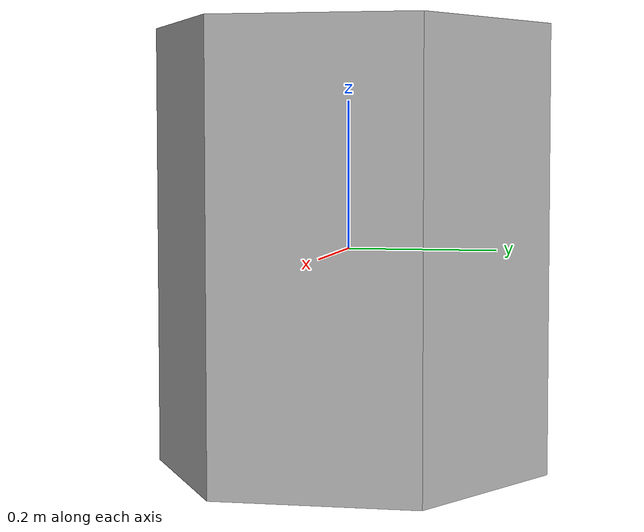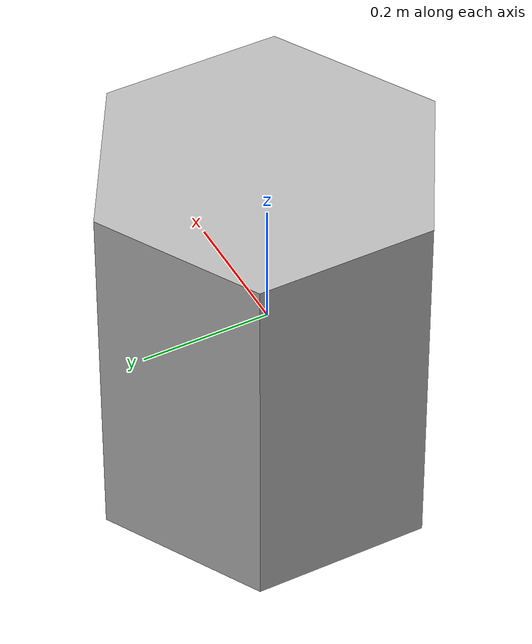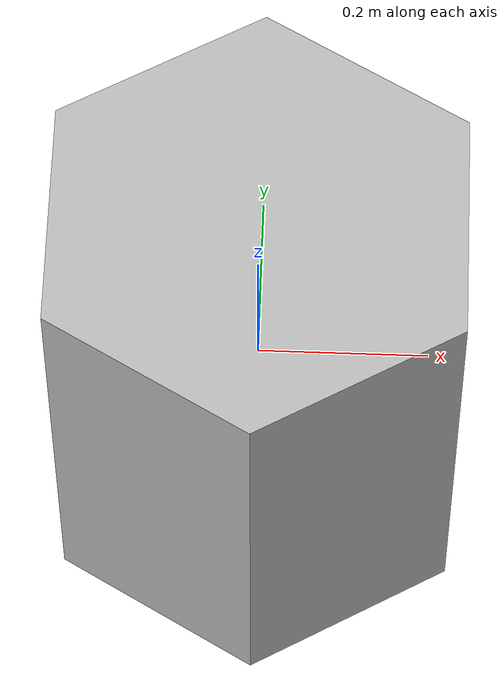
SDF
<?xml version="1.0"?>
<sdf version="1.6">
  <model name="xgc2_convex_ugv_hexagon_1">
    <static>true</static>
    <link name="body">
      <collision name="collision">
        <geometry>
          <mesh>
            <uri>model://xgc2_convex_ugv_hexagon_1/meshes/ugv_hexagon_1.obj</uri>
          </mesh>
        </geometry>
      </collision>
      <visual name="visual">
        <geometry>
          <mesh>
            <uri>model://xgc2_convex_ugv_hexagon_1/meshes/ugv_hexagon_1.obj</uri>
          </mesh>
        </geometry>
      </visual>
    </link>
  </model>
</sdf>
